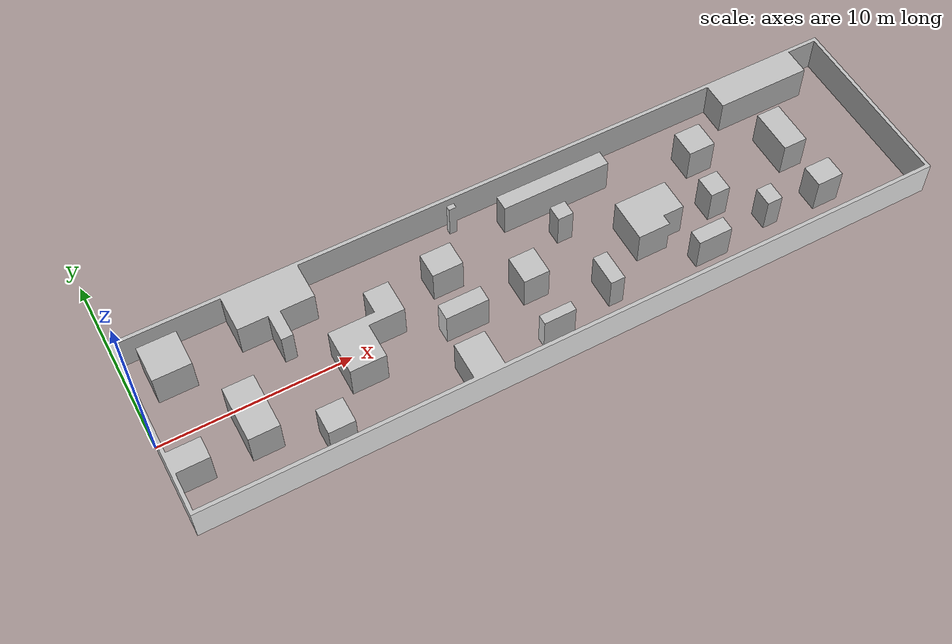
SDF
<sdf version="1.4">
 <world name="world">
  <model name="ground_plane">
   <static>1</static>
   <link name="link">
    <collision name="collision">
     <geometry><plane><normal>0 0 1</normal><size>100 100</size></plane></geometry>
     <surface><friction><ode><mu>100</mu><mu2>50</mu2></ode></friction></surface>
    </collision>
    <velocity_decay><linear>0</linear><angular>0</angular></velocity_decay>
   </link>
  </model>
  <model name="corridor">
   <static>1</static>
   <link name="body">
    <visual name="visual">
     <pose>0 0 -0.001 0 -0 0</pose>
     <geometry><mesh><uri>model://iros2017_corridor/iros2017_corridor.dae</uri></mesh></geometry>
    </visual>
    <collision name="corridor">
     <pose>0 0 -0.001 0 -0 0</pose>
     <geometry><mesh><uri>model://iros2017_corridor/iros2017_corridor.dae</uri></mesh></geometry>
    </collision>
    <velocity_decay><linear>0</linear><angular>0</angular></velocity_decay>
   </link>
  </model>
  <light name="sun1" type="directional">
   <pose>1 0 3 0 -0 0</pose>
   <diffuse>0.8 0.8 0.8 1</diffuse>
   <specular>0.2 0.2 0.2 1</specular>
   <attenuation>
    <range>20</range>
    <constant>0.9</constant>
    <linear>0.01</linear>
    <quadratic>0.001</quadratic>
   </attenuation>
   <direction>-0 0 -1</direction>
  </light>
  <light name="sun2" type="point">
   <pose>20 0 5 0 -0 0</pose>
   <diffuse>0.8 0.8 0.8 1</diffuse>
   <specular>0.2 0.2 0.2 1</specular>
   <attenuation>
    <range>100</range>
    <constant>0.9</constant>
    <linear>0.01</linear>
    <quadratic>0.001</quadratic>
   </attenuation>
   <direction>-0 0 -1</direction>
  </light>
  <physics type="ode">
   <max_step_size>0.001</max_step_size>
   <real_time_factor>1</real_time_factor>
   <real_time_update_rate>1000</real_time_update_rate>
   <gravity>0 0 -9.8</gravity>
  </physics>
  <scene><ambient>0.4 0.4 0.4 1</ambient><background>0.7 0.7 0.7 1</background><shadows>1</shadows></scene>
  <spherical_coordinates>
   <surface_model>EARTH_WGS84</surface_model>
   <latitude_deg>0</latitude_deg>
   <longitude_deg>0</longitude_deg>
   <elevation>0</elevation>
   <heading_deg>0</heading_deg>
  </spherical_coordinates>
 </world>
</sdf>
